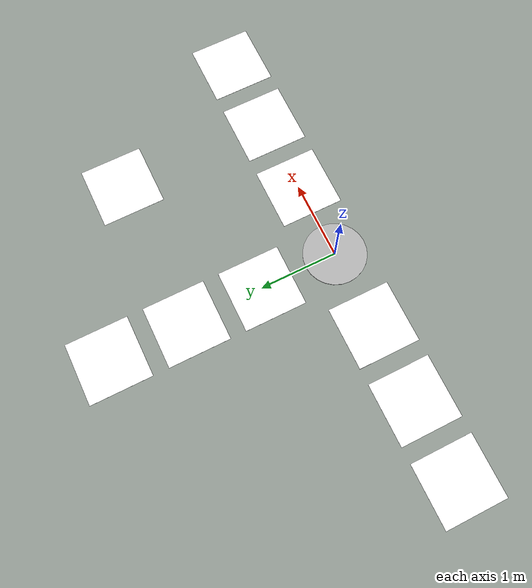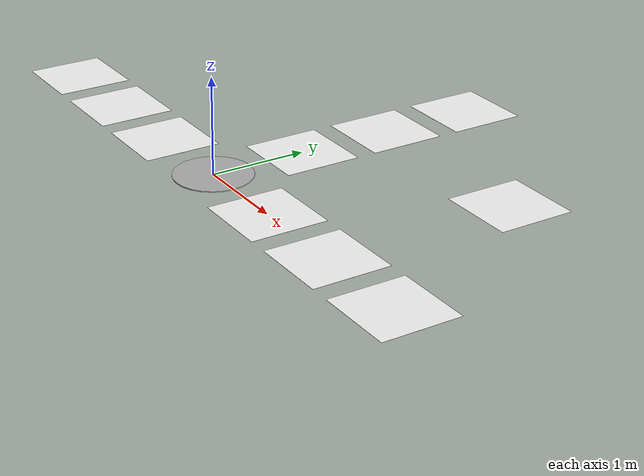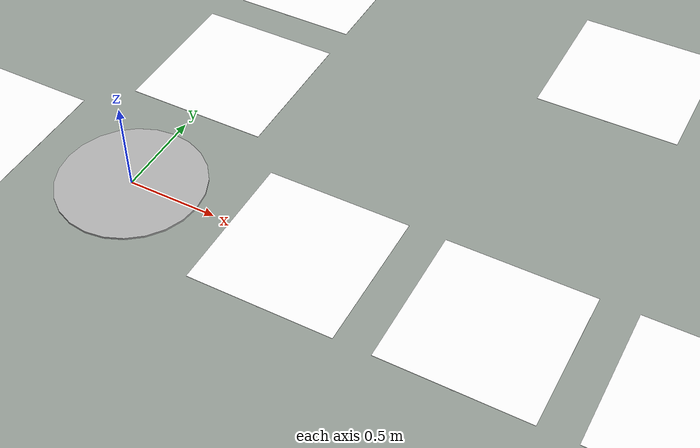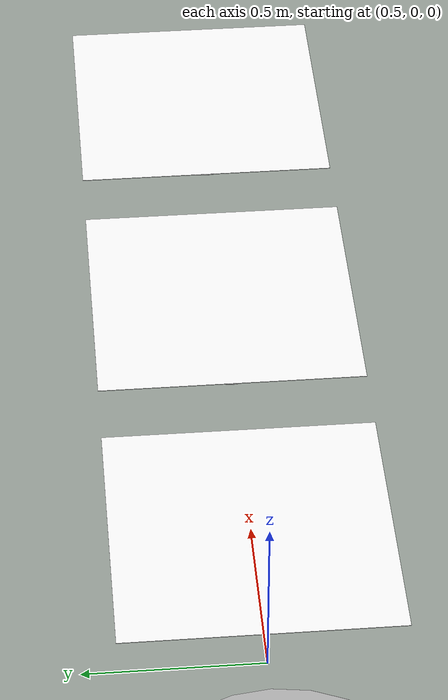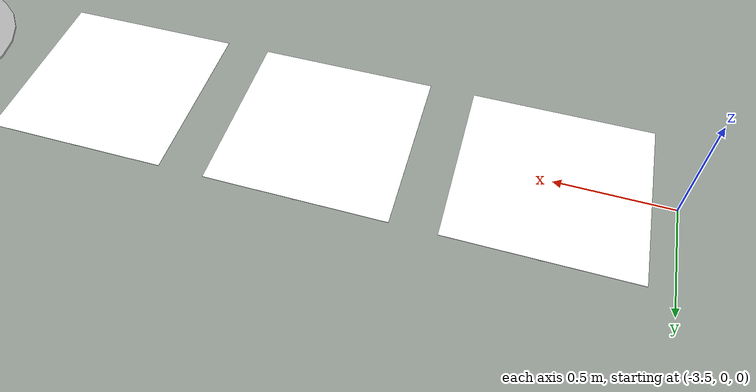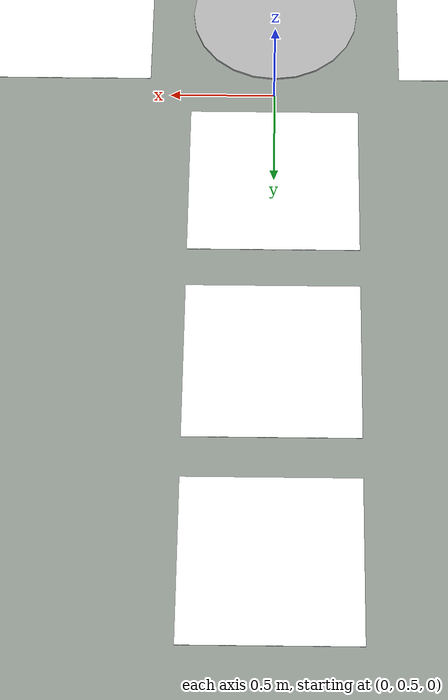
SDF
<sdf version="1.10">
 <world name="EletroQuad2026">
  <physics type="ode">
   <max_step_size>0.001</max_step_size>
   <real_time_factor>1</real_time_factor>
   <real_time_update_rate>1000</real_time_update_rate>
  </physics>
  <gravity>0 0 -9.8000000000000007</gravity>
  <magnetic_field>5.5644999999999998e-06 2.2875799999999999e-05 -4.2388400000000002e-05</magnetic_field>
  <atmosphere type="adiabatic"/>
  <scene>
   <ambient>0.400000006 0.400000006 0.400000006 1</ambient>
   <background>0.699999988 0.699999988 0.699999988 1</background>
   <shadows>true</shadows>
  </scene>
  <model name="arena">
   <include merge="true"><uri>models/miscs/arena_m1-m3</uri></include>
   <static>true</static>
   <pose degrees="true">0 0 0.1 0 0 0</pose>
  </model>
  <include>
   <uri>models/miscs/takeoff_platform</uri>
   <static>true</static>
   <pose degrees="true">0 0 0 0 0 0</pose>
  </include>
  <model name="gabarito">
   <include merge="true"><uri>models/miscs/default_platform</uri></include>
   <pose degrees="true">2 2 0 0 0 -90</pose>
   <model name="aruco">
    <include merge="true"><uri>models/bouncing/ArUco_marker</uri></include>
    <pose degrees="true">0 0 0.001 0 0 0</pose>
   </model>
   <model name="shape0">
    <include merge="true"><uri>models/bouncing/shapes/hexagon</uri></include>
    <pose degrees="true">0 0 0.001 0 0 0</pose>
   </model>
  </model>
  <model name="3hexagon">
   <include merge="true"><uri>models/miscs/default_platform</uri></include>
   <pose degrees="true">3 0 0 0 0 -90</pose>
   <model name="shape1">
    <include merge="true"><uri>models/bouncing/shapes/hexagon</uri></include>
    <pose degrees="true">0 0 0.002 0 0 0</pose>
    <model name="num1">
     <include merge="true"><uri>models/bouncing/nums/num_3</uri></include>
     <pose degrees="true">0 0 0.001 0 0 0</pose>
    </model>
   </model>
  </model>
  <model name="4hexagon">
   <include merge="true"><uri>models/miscs/default_platform</uri></include>
   <pose degrees="true">2 0 0 0 0 -90</pose>
   <model name="shape2">
    <include merge="true"><uri>models/bouncing/shapes/hexagon</uri></include>
    <pose degrees="true">0 0 0.002 0 0 0</pose>
    <model name="num2">
     <include merge="true"><uri>models/bouncing/nums/num_4</uri></include>
     <pose degrees="true">0 0 0.001 0 0 0</pose>
    </model>
   </model>
  </model>
  <model name="5hexagon">
   <include merge="true"><uri>models/miscs/default_platform</uri></include>
   <pose degrees="true">1 0 0 0 0 -90</pose>
   <model name="shape3">
    <include merge="true"><uri>models/bouncing/shapes/hexagon</uri></include>
    <pose degrees="true">0 0 0.002 0 0 0</pose>
    <model name="num3">
     <include merge="true"><uri>models/bouncing/nums/num_5</uri></include>
     <pose degrees="true">0 0 0.001 0 0 0</pose>
    </model>
   </model>
  </model>
  <model name="3star">
   <include merge="true"><uri>models/miscs/default_platform</uri></include>
   <pose degrees="true">0 3 0 0 0 -90</pose>
   <model name="shape4">
    <include merge="true"><uri>models/bouncing/shapes/star</uri></include>
    <pose degrees="true">0 0 0.002 0 0 0</pose>
    <model name="num4">
     <include merge="true"><uri>models/bouncing/nums/num_3</uri></include>
     <pose degrees="true">0 0 0.001 0 0 0</pose>
    </model>
   </model>
  </model>
  <model name="4star">
   <include merge="true"><uri>models/miscs/default_platform</uri></include>
   <pose degrees="true">0 2 0 0 0 -90</pose>
   <model name="shape5">
    <include merge="true"><uri>models/bouncing/shapes/star</uri></include>
    <pose degrees="true">0 0 0.002 0 0 0</pose>
    <model name="num5">
     <include merge="true"><uri>models/bouncing/nums/num_4</uri></include>
     <pose degrees="true">0 0 0.001 0 0 0</pose>
    </model>
   </model>
  </model>
  <model name="5star">
   <include merge="true"><uri>models/miscs/default_platform</uri></include>
   <pose degrees="true">0 1 0 0 0 -90</pose>
   <model name="shape6">
    <include merge="true"><uri>models/bouncing/shapes/star</uri></include>
    <pose degrees="true">0 0 0.002 0 0 0</pose>
    <model name="num6">
     <include merge="true"><uri>models/bouncing/nums/num_5</uri></include>
     <pose degrees="true">0 0 0.001 0 0 0</pose>
    </model>
   </model>
  </model>
  <model name="3triangle">
   <include merge="true"><uri>models/miscs/default_platform</uri></include>
   <pose degrees="true">-3 0 0 0 0 -90</pose>
   <model name="shape7">
    <include merge="true"><uri>models/bouncing/shapes/triangle</uri></include>
    <pose degrees="true">0 0 0.002 0 0 0</pose>
    <model name="num7">
     <include merge="true"><uri>models/bouncing/nums/num_3</uri></include>
     <pose degrees="true">0 0 0.001 0 0 0</pose>
    </model>
   </model>
  </model>
  <model name="4triangle">
   <include merge="true"><uri>models/miscs/default_platform</uri></include>
   <pose degrees="true">-2 0 0 0 0 -90</pose>
   <model name="shape8">
    <include merge="true"><uri>models/bouncing/shapes/triangle</uri></include>
    <pose degrees="true">0 0 0.002 0 0 0</pose>
    <model name="num8">
     <include merge="true"><uri>models/bouncing/nums/num_4</uri></include>
     <pose degrees="true">0 0 0.001 0 0 0</pose>
    </model>
   </model>
  </model>
  <model name="5triangle">
   <include merge="true"><uri>models/miscs/default_platform</uri></include>
   <pose degrees="true">-1 0 0 0 0 -90</pose>
   <model name="shape9">
    <include merge="true"><uri>models/bouncing/shapes/triangle</uri></include>
    <pose degrees="true">0 0 0.002 0 0 0</pose>
    <model name="num9">
     <include merge="true"><uri>models/bouncing/nums/num_5</uri></include>
     <pose degrees="true">0 0 0.001 0 0 0</pose>
    </model>
   </model>
  </model>
  <light name="sun" type="directional">
   <pose>0 0 10 0 0 0</pose>
   <intensity>1</intensity>
   <direction>-0.5 0.10000000000000001 -0.90000000000000002</direction>
   <diffuse>0.800000012 0.800000012 0.800000012 1</diffuse>
   <specular>0.200000003 0.200000003 0.200000003 1</specular>
   <attenuation>
    <range>1000</range>
    <linear>0.01</linear>
    <constant>0.90000000000000002</constant>
    <quadratic>0.001</quadratic>
   </attenuation>
   <spot><inner_angle>0</inner_angle><outer_angle>0</outer_angle><falloff>0</falloff></spot>
  </light>
  <spherical_coordinates>
   <surface_model>EARTH_WGS84</surface_model>
   <world_frame_orientation>ENU</world_frame_orientation>
   <latitude_deg>47.397971057728974</latitude_deg>
   <longitude_deg>8.546163739800146</longitude_deg>
   <elevation>0</elevation>
  </spherical_coordinates>
 </world>
</sdf>

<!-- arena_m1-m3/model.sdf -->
<sdf version='1.10'>
<model name='arena_m2'>
  <link name='arena-m2_link'>
    <enable_wind>false</enable_wind>
    <collision name='arena-m2_collision'>
      <geometry><plane>
        <normal>0 0 1</normal>
        <size>7 13</size>
      </plane></geometry>
      <surface>
        <friction><ode/></friction>
        <bounce/>
        <contact/>
      </surface>
    </collision>
    <visual name='arena-m2_visual'>
      <geometry><plane>
        <normal>0 0 1</normal>
        <size>7 7</size>
      </plane></geometry>
      <material>
        <ambient>1 1 1 1</ambient>
        <diffuse>1 1 1 1</diffuse>
        <specular>1 1 1 1</specular>
      </material>
    </visual>
  </link>
  <self_collide>false</self_collide>
</model>
</sdf>

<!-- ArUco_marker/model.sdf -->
<sdf version='1.10'>
<model name='ArUco_marker'>
  <link name='ArUco_link'>
    <enable_wind>false</enable_wind>
    <visual name='ArUco_visual'>
      <geometry><plane>
        <normal>0 0 1</normal>
        <size>0.025 0.025</size>
      </plane></geometry>
      <material>
        <diffuse>0 0 0 1</diffuse>
        <specular>1 1 1 1</specular>
      </material>
    </visual>
  </link>
  <self_collide>false</self_collide>
  <static>true</static>
</model>
</sdf>

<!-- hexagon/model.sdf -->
<sdf version='1.10'>
<model name='hexagon'>
  <link name='hexagon_link'>
    <enable_wind>false</enable_wind>
    <visual name='hexagon_img'>
      <pose>0 0 0.001 0 0 0</pose>
      <geometry><plane>
        <normal>0 0 1</normal>
        <size>0.8 0.8</size>
      </plane></geometry>
        <material>
        <diffuse>1 1 1 1</diffuse>
        <specular>1 1 1 1</specular>
        <pbr>
          <metal>
            <albedo_map>materials/textures/hexagon.png</albedo_map>
            <metalness>0</metalness>
            <roughness>1</roughness>
          </metal>
        </pbr>
        </material>
    </visual>
  </link>
  <self_collide>false</self_collide>
</model>
</sdf>

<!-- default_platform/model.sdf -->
<sdf version='1.10'>
<model name='default_platform'>
  <link name='default_link'>
    <enable_wind>false</enable_wind>
    <collision name='default_collision'>
      <geometry><cylinder>
        <radius>0.4</radius>
        <length>0.001</length>
      </cylinder></geometry>
      <surface>
        <friction><ode/></friction>
        <bounce/>
        <contact/>
      </surface>
    </collision>
    <visual name='default_visual'>
      <geometry><cylinder>
        <radius>0.4</radius>
        <length>0.001</length>
      </cylinder></geometry>
      <material>
        <ambient>1 1 1 1</ambient>
        <diffuse>1 1 1 1</diffuse>
        <specular>1 1 1 1</specular>
      </material>
    </visual>
  </link>
  <self_collide>false</self_collide>
</model>
</sdf>

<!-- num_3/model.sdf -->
<sdf version='1.10'>
<model name='num_3'>
  <link name='num3_link'>
    <enable_wind>false</enable_wind>
    <visual name='num3_img'>
      <pose>0 0 0.001 0 0 0</pose>
      <geometry><plane>
        <normal>0 0 1</normal>
        <size>0.8 0.8</size>
      </plane></geometry>
        <material>
        <diffuse>1 1 1 1</diffuse>
        <specular>1 1 1 1</specular>
        <pbr>
          <metal>
            <albedo_map>materials/textures/num_3.png</albedo_map>
            <metalness>0</metalness>
            <roughness>1</roughness>
          </metal>
        </pbr>
        </material>
    </visual>
  </link>
  <self_collide>false</self_collide>
</model>
</sdf>

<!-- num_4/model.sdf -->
<sdf version='1.10'>
<model name='num_4'>
  <link name='num4_link'>
    <enable_wind>false</enable_wind>
    <visual name='num4_img'>
      <pose>0 0 0.001 0 0 0</pose>
      <geometry><plane>
        <normal>0 0 1</normal>
        <size>0.8 0.8</size>
      </plane></geometry>
        <material>
        <diffuse>1 1 1 1</diffuse>
        <specular>1 1 1 1</specular>
        <pbr>
          <metal>
            <albedo_map>materials/textures/num_4.png</albedo_map>
            <metalness>0</metalness>
            <roughness>1</roughness>
          </metal>
        </pbr>
        </material>
    </visual>
  </link>
  <self_collide>false</self_collide>
</model>
</sdf>

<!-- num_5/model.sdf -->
<sdf version='1.10'>
<model name='num_5'>
  <link name='num5_link'>
    <enable_wind>false</enable_wind>
    <visual name='num5_img'>
      <pose>0 0 0.001 0 0 0</pose>
      <geometry><plane>
        <normal>0 0 1</normal>
        <size>0.8 0.8</size>
      </plane></geometry>
        <material>
        <diffuse>1 1 1 1</diffuse>
        <specular>1 1 1 1</specular>
        <pbr>
          <metal>
            <albedo_map>materials/textures/num_5.png</albedo_map>
            <metalness>0</metalness>
            <roughness>1</roughness>
          </metal>
        </pbr>
        </material>
    </visual>
  </link>
  <self_collide>false</self_collide>
</model>
</sdf>

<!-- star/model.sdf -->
<sdf version='1.10'>
<model name='star'>
  <link name='star_link'>
    <enable_wind>false</enable_wind>
    <visual name='star_img'>
      <pose>0 0 0.001 0 0 0</pose>
      <geometry><plane>
        <normal>0 0 1</normal>
        <size>0.8 0.8</size>
      </plane></geometry>
        <material>
        <diffuse>1 1 1 1</diffuse>
        <specular>1 1 1 1</specular>
        <pbr>
          <metal>
            <albedo_map>materials/textures/star.png</albedo_map>
            <metalness>0</metalness>
            <roughness>1</roughness>
          </metal>
        </pbr>
        </material>
    </visual>
  </link>
  <self_collide>false</self_collide>
</model>
</sdf>

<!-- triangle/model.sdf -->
<sdf version='1.10'>
<model name='triangle'>
  <link name='triangle_link'>
    <enable_wind>false</enable_wind>
    <visual name='triangle_img'>
      <pose>0 0 0.001 0 0 0</pose>
      <geometry><plane>
        <normal>0 0 1</normal>
        <size>0.8 0.8</size>
      </plane></geometry>
        <material>
        <diffuse>1 1 1 1</diffuse>
        <specular>1 1 1 1</specular>
        <pbr>
          <metal>
            <albedo_map>materials/textures/triangle.png</albedo_map>
            <metalness>0</metalness>
            <roughness>1</roughness>
          </metal>
        </pbr>
        </material>
    </visual>
  </link>
  <self_collide>false</self_collide>
</model>
</sdf>

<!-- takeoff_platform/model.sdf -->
<sdf version='1.10'>
<model name='takeoff_platform'>
  <link name='takeoff_link'>
    <enable_wind>false</enable_wind>
    <include><uri>models/miscs/default_platform</uri></include>
    <visual name='takeoff_image'>
      <pose>0 0 0.006 0 0 0</pose>
      <geometry><cylinder>
        <radius>0.4</radius>
        <length>0.01</length>
      </cylinder></geometry>
        <material>
        <diffuse>0.7 0.7 0.7 1</diffuse>
        <specular>1 1 1 1</specular>
        <pbr>
          <metal>
            <albedo_map>materials/textures/takeoff.png</albedo_map>
            <metalness>0</metalness>
            <roughness>1</roughness>
          </metal>
        </pbr>
        </material>
    </visual>
  </link>
  <self_collide>false</self_collide>
</model>
</sdf>
